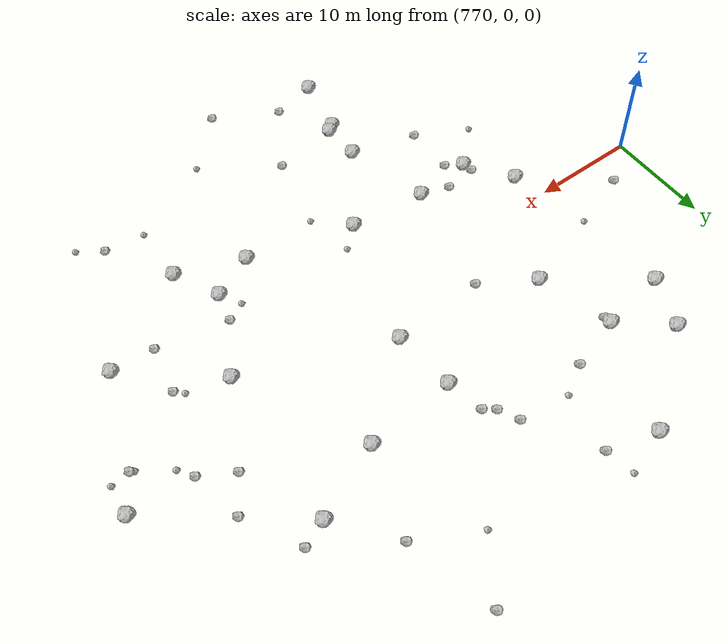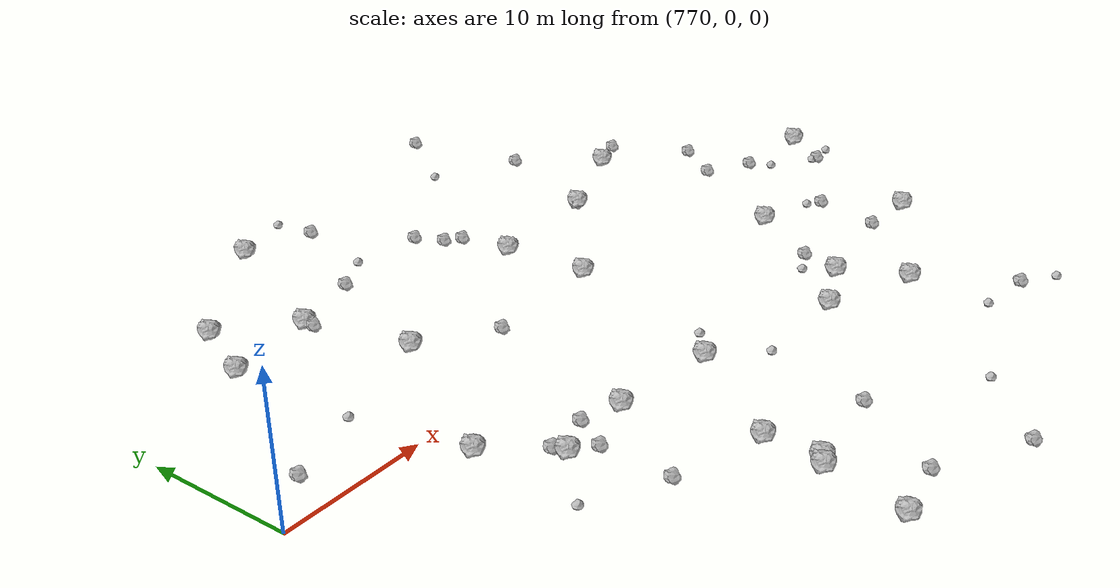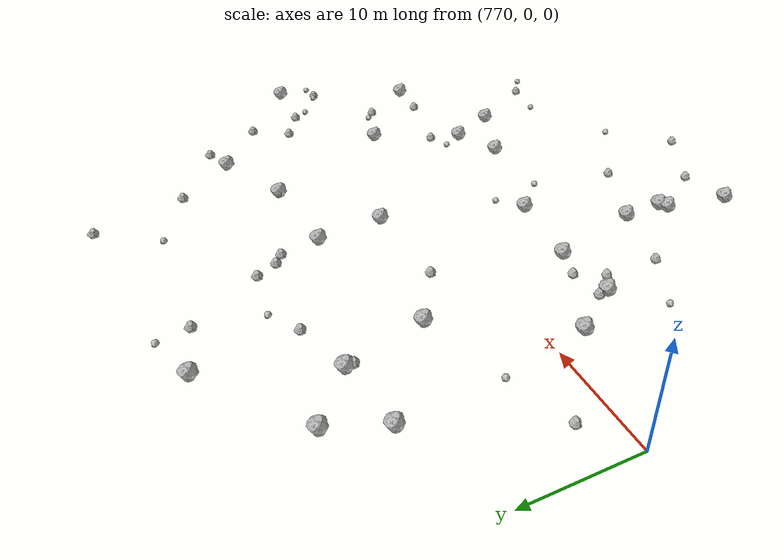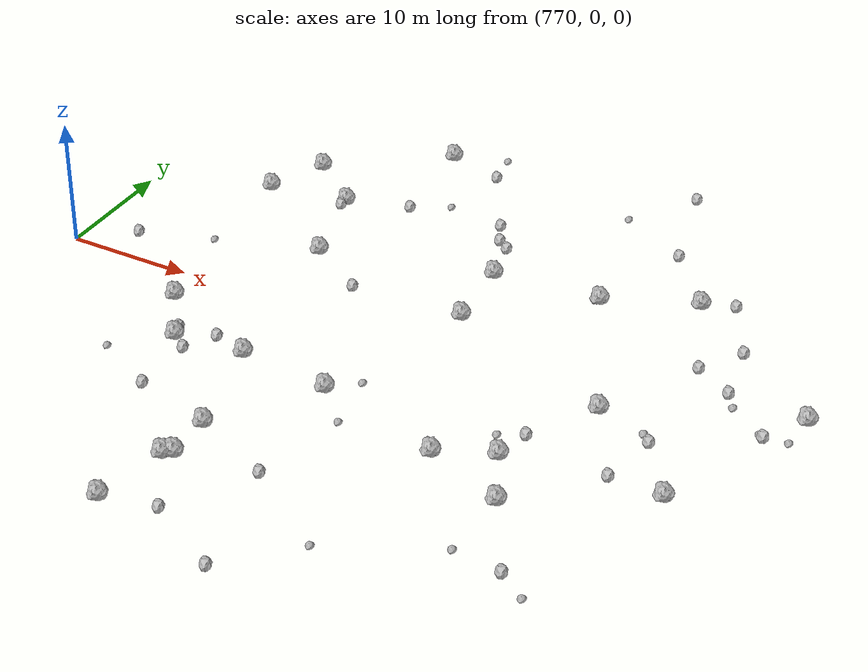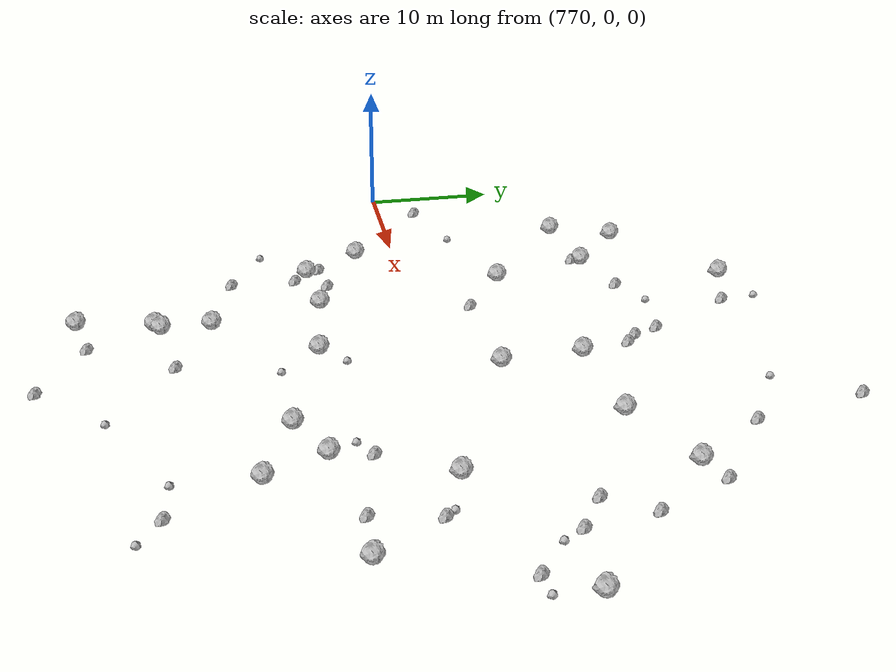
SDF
<sdf version="1.6">
 <world name="default">
  <include><uri>model://sun</uri></include>
  <model name="rock1_20_4">
   <include><uri>model://rock1</uri><pose>828.0248350593205 5.140304764731198 0.5 0 0 0</pose></include>
  </model>
  <model name="rock1_20_5">
   <include><uri>model://rock1</uri><pose>791.7762109476568 -15.045965901622386 0.5 0 0 0</pose></include>
  </model>
  <model name="rock1_20_6">
   <include><uri>model://rock1</uri><pose>822.7004311857793 -7.157318009008836 0.5 0 0 0</pose></include>
  </model>
  <model name="rock1_20_7">
   <include><uri>model://rock1</uri><pose>807.0224205612601 -10.35580974180807 0.5 0 0 0</pose></include>
  </model>
  <model name="rock1_20_8">
   <include><uri>model://rock1</uri><pose>784.1416494270442 -7.287226823266714 0.5 0 0 0</pose></include>
  </model>
  <model name="rock1_20_9">
   <include><uri>model://rock1</uri><pose>811.1487228228712 -8.423452138178963 0.5 0 0 0</pose></include>
  </model>
  <model name="rock1_20_10">
   <include><uri>model://rock1</uri><pose>791.2433762960455 -19.232410289846523 0.5 0 0 0</pose></include>
  </model>
  <model name="rock1_20_11">
   <include><uri>model://rock1</uri><pose>787.431836765081 7.4914013929564405 0.5 0 0 0</pose></include>
  </model>
  <model name="rock1_20_12">
   <include><uri>model://rock1</uri><pose>785.549791608894 14.730176520676572 0.5 0 0 0</pose></include>
  </model>
  <model name="rock1_20_13">
   <include><uri>model://rock1</uri><pose>816.052483853776 14.7152979436326 0.5 0 0 0</pose></include>
  </model>
  <model name="rock1_20_14">
   <include><uri>model://rock1</uri><pose>800.7010918823462 10.997494686935177 0.5 0 0 0</pose></include>
  </model>
  <model name="rock1_20_15">
   <include><uri>model://rock1</uri><pose>801.1638123712385 4.931420920349737 0.5 0 0 0</pose></include>
  </model>
  <model name="rock1_20_16">
   <include><uri>model://rock1</uri><pose>814.8683372215984 -0.5260953241564579 0.5 0 0 0</pose></include>
  </model>
  <model name="rock1_20_17">
   <include><uri>model://rock1</uri><pose>813.2494165168623 -12.779519748684322 0.5 0 0 0</pose></include>
  </model>
  <model name="rock1_20_18">
   <include><uri>model://rock1</uri><pose>781.2165618576172 -3.008985526649809 0.5 0 0 0</pose></include>
  </model>
  <model name="rock1_20_19">
   <include><uri>model://rock1</uri><pose>809.1857331273037 11.701077460794238 0.5 0 0 0</pose></include>
  </model>
  <model name="rock1_20_20">
   <include><uri>model://rock1</uri><pose>790.1268450921231 -24.9589118052746 0.5 0 0 0</pose></include>
  </model>
  <model name="rock1_20_21">
   <include><uri>model://rock1</uri><pose>789.7029247108703 -6.777339128075408 0.5 0 0 0</pose></include>
  </model>
  <model name="rock1_20_22">
   <include><uri>model://rock1</uri><pose>789.8121899977557 24.92348900425246 0.5 0 0 0</pose></include>
  </model>
  <model name="rock1_20_23">
   <include><uri>model://rock1</uri><pose>797.0075787360238 -7.587012601594871 0.5 0 0 0</pose></include>
  </model>
  <model name="rock1_20_24">
   <include><uri>model://rock1</uri><pose>781.150897585521 18.447492456068183 0.5 0 0 0</pose></include>
  </model>
  <model name="rock1_20_25">
   <include><uri>model://rock1</uri><pose>779.156827264534 13.770282328014531 0.5 0 0 0</pose></include>
  </model>
  <model name="rock1_20_26">
   <include><uri>model://rock1</uri><pose>791.8934474867366 -18.76909107595225 0.5 0 0 0</pose></include>
  </model>
  <model name="rock2_20_0">
   <include><uri>model://rock2</uri><pose>812.0054930660646 19.968369303650725 0.3 0 0 0</pose></include>
  </model>
  <model name="rock2_20_1">
   <include><uri>model://rock2</uri><pose>819.0642144508162 7.239678343953841 0.3 0 0 0</pose></include>
  </model>
  <model name="rock2_20_2">
   <include><uri>model://rock2</uri><pose>798.9770455434248 15.357923279177868 0.3 0 0 0</pose></include>
  </model>
  <model name="rock2_20_3">
   <include><uri>model://rock2</uri><pose>794.3332400166254 -24.038943787421825 0.3 0 0 0</pose></include>
  </model>
  <model name="rock2_20_4">
   <include><uri>model://rock2</uri><pose>792.2241775022057 4.408560425090926 0.3 0 0 0</pose></include>
  </model>
  <model name="rock2_20_5">
   <include><uri>model://rock2</uri><pose>819.4744895236305 -2.3240856071587572 0.3 0 0 0</pose></include>
  </model>
  <model name="rock2_20_6">
   <include><uri>model://rock2</uri><pose>799.96949576689 14.580945776786166 0.3 0 0 0</pose></include>
  </model>
  <model name="rock2_20_7">
   <include><uri>model://rock2</uri><pose>811.8206618880599 -5.576125468497764 0.3 0 0 0</pose></include>
  </model>
  <model name="rock2_20_8">
   <include><uri>model://rock2</uri><pose>826.0248620738129 1.9411824299773492 0.3 0 0 0</pose></include>
  </model>
  <model name="rock2_20_9">
   <include><uri>model://rock2</uri><pose>785.5133097224194 14.028151899701726 0.3 0 0 0</pose></include>
  </model>
  <model name="rock2_20_10">
   <include><uri>model://rock2</uri><pose>783.8512699608535 -6.305119094264803 0.3 0 0 0</pose></include>
  </model>
  <model name="rock2_20_11">
   <include><uri>model://rock2</uri><pose>798.0739500637085 17.257060358818578 0.3 0 0 0</pose></include>
  </model>
  <model name="rock2_20_12">
   <include><uri>model://rock2</uri><pose>790.5088989808437 16.27905397638986 0.3 0 0 0</pose></include>
  </model>
  <model name="rock2_20_13">
   <include><uri>model://rock2</uri><pose>822.0642127439426 5.4737187061587065 0.3 0 0 0</pose></include>
  </model>
  <model name="rock2_20_14">
   <include><uri>model://rock2</uri><pose>773.8202219426471 2.971493607005918 0.3 0 0 0</pose></include>
  </model>
  <model name="rock2_20_15">
   <include><uri>model://rock2</uri><pose>809.9451738999593 28.266510170093156 0.3 0 0 0</pose></include>
  </model>
  <model name="rock2_20_16">
   <include><uri>model://rock2</uri><pose>786.9138775347242 -5.926539164285497 0.3 0 0 0</pose></include>
  </model>
  <model name="rock2_20_17">
   <include><uri>model://rock2</uri><pose>800.1989889075945 -27.32762097795511 0.3 0 0 0</pose></include>
  </model>
  <model name="rock2_20_18">
   <include><uri>model://rock2</uri><pose>794.4425875745792 23.592389274323516 0.3 0 0 0</pose></include>
  </model>
  <model name="rock2_20_19">
   <include><uri>model://rock2</uri><pose>818.4650603141678 15.687543624816783 0.3 0 0 0</pose></include>
  </model>
  <model name="rock2_20_20">
   <include><uri>model://rock2</uri><pose>798.1296003988533 -17.811275611628318 0.3 0 0 0</pose></include>
  </model>
  <model name="rock2_20_21">
   <include><uri>model://rock2</uri><pose>816.8448139903737 -18.937809508019484 0.3 0 0 0</pose></include>
  </model>
  <model name="rock2_20_22">
   <include><uri>model://rock2</uri><pose>785.557699000496 -8.317980948726284 0.3 0 0 0</pose></include>
  </model>
  <model name="rock2_20_23">
   <include><uri>model://rock2</uri><pose>785.4793224764319 -13.253810260231308 0.3 0 0 0</pose></include>
  </model>
  <model name="rock2_20_24">
   <include><uri>model://rock2</uri><pose>821.1753121262757 10.446769916637386 0.3 0 0 0</pose></include>
  </model>
  <model name="rock2_20_25">
   <include><uri>model://rock2</uri><pose>808.9156796432626 11.681603948397438 0.3 0 0 0</pose></include>
  </model>
  <model name="rock2_20_26">
   <include><uri>model://rock2</uri><pose>818.5945505776083 -6.953652843822454 0.3 0 0 0</pose></include>
  </model>
  <model name="rock3_20_0">
   <include><uri>model://rock3</uri><pose>809.9958531727184 -6.526778208991761 0.2 0 0 0</pose></include>
  </model>
  <model name="rock3_20_1">
   <include><uri>model://rock3</uri><pose>779.4802142257843 4.891187788686302 0.2 0 0 0</pose></include>
  </model>
  <model name="rock3_20_2">
   <include><uri>model://rock3</uri><pose>819.0171170904498 -20.52981109401856 0.2 0 0 0</pose></include>
  </model>
  <model name="rock3_20_3">
   <include><uri>model://rock3</uri><pose>793.9761154009449 26.33925524030289 0.2 0 0 0</pose></include>
  </model>
  <model name="rock3_20_4">
   <include><uri>model://rock3</uri><pose>806.374290042797 22.965141523425217 0.2 0 0 0</pose></include>
  </model>
  <model name="rock3_20_5">
   <include><uri>model://rock3</uri><pose>780.5601372592176 -10.73752769750164 0.2 0 0 0</pose></include>
  </model>
  <model name="rock3_20_6">
   <include><uri>model://rock3</uri><pose>825.6447963469451 2.0974380765431775 0.2 0 0 0</pose></include>
  </model>
  <model name="rock3_20_7">
   <include><uri>model://rock3</uri><pose>827.7704454966602 2.1354800784449353 0.2 0 0 0</pose></include>
  </model>
  <model name="rock3_20_8">
   <include><uri>model://rock3</uri><pose>804.9018255162217 -22.561263476504628 0.2 0 0 0</pose></include>
  </model>
  <model name="rock3_20_9">
   <include><uri>model://rock3</uri><pose>799.8219376162637 -10.53972498219914 0.2 0 0 0</pose></include>
  </model>
  <model name="rock3_20_10">
   <include><uri>model://rock3</uri><pose>799.005058905767 -5.81395783330132 0.2 0 0 0</pose></include>
  </model>
  <model name="rock3_20_11">
   <include><uri>model://rock3</uri><pose>793.2909929734396 17.88211949641319 0.2 0 0 0</pose></include>
  </model>
  <model name="rock3_20_12">
   <include><uri>model://rock3</uri><pose>813.0309291432314 -18.52100267899008 0.2 0 0 0</pose></include>
  </model>
  <model name="rock3_20_13">
   <include><uri>model://rock3</uri><pose>822.9182486126821 4.030792648135666 0.2 0 0 0</pose></include>
  </model>
  <model name="rock3_20_14">
   <include><uri>model://rock3</uri><pose>818.7029234113995 -1.6344375100179391 0.2 0 0 0</pose></include>
  </model>
 </world>
</sdf>
